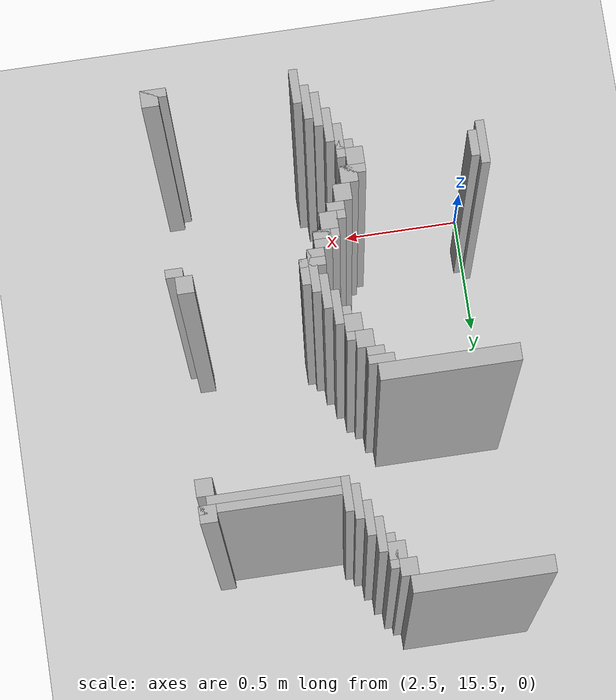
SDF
<sdf version="1.6">
 <world name="slam_world">
  <model name="ground_plane">
   <static>true</static>
   <link name="link">
    <collision name="collision">
     <geometry><plane><normal>0 0 1</normal><size>100 100</size></plane></geometry>
    </collision>
    <visual name="visual">
     <geometry><plane><normal>0 0 1</normal><size>100 100</size></plane></geometry>
     <material>
      <ambient>0.8 0.8 0.8 1</ambient>
      <diffuse>0.8 0.8 0.8 1</diffuse>
      <specular>0.8 0.8 0.8 1</specular>
     </material>
    </visual>
   </link>
  </model>
  <model name="wall_1">
   <static>true</static>
   <pose>2.7494199535962878 17.366589327146173 1.0 0 0 0</pose>
   <link name="link">
    <collision name="collision">
     <geometry><box><size>0.5568445475638051 0.06960556844547564 2.0</size></box></geometry>
    </collision>
    <visual name="visual">
     <geometry><box><size>0.5568445475638051 0.06960556844547564 2.0</size></box></geometry>
     <material><ambient>0.5 0.5 0.5 1</ambient><diffuse>0.7 0.7 0.7 1</diffuse></material>
    </visual>
   </link>
  </model>
  <model name="wall_14">
   <static>true</static>
   <pose>3.02784222737819 17.296983758700694 1.0 0 0 0</pose>
   <link name="link">
    <collision name="collision">
     <geometry><box><size>0.06960556844547564 0.06960556844547564 2.0</size></box></geometry>
    </collision>
    <visual name="visual">
     <geometry><box><size>0.06960556844547564 0.06960556844547564 2.0</size></box></geometry>
     <material><ambient>0.5 0.5 0.5 1</ambient><diffuse>0.7 0.7 0.7 1</diffuse></material>
    </visual>
   </link>
  </model>
  <model name="wall_34">
   <static>true</static>
   <pose>3.0800464037122968 17.22737819025522 1.0 0 0 0</pose>
   <link name="link">
    <collision name="collision">
     <geometry><box><size>0.03480278422273782 0.13921113689095127 2.0</size></box></geometry>
    </collision>
    <visual name="visual">
     <geometry><box><size>0.03480278422273782 0.13921113689095127 2.0</size></box></geometry>
     <material><ambient>0.5 0.5 0.5 1</ambient><diffuse>0.7 0.7 0.7 1</diffuse></material>
    </visual>
   </link>
  </model>
  <model name="wall_54">
   <static>true</static>
   <pose>3.062645011600928 17.22737819025522 1.0 0 0 0</pose>
   <link name="link">
    <collision name="collision">
     <geometry><box><size>0.06960556844547564 0.06960556844547564 2.0</size></box></geometry>
    </collision>
    <visual name="visual">
     <geometry><box><size>0.06960556844547564 0.06960556844547564 2.0</size></box></geometry>
     <material><ambient>0.5 0.5 0.5 1</ambient><diffuse>0.7 0.7 0.7 1</diffuse></material>
    </visual>
   </link>
  </model>
  <model name="wall_74">
   <static>true</static>
   <pose>3.1148491879350346 17.157772621809745 1.0 0 0 0</pose>
   <link name="link">
    <collision name="collision">
     <geometry><box><size>0.03480278422273782 0.13921113689095127 2.0</size></box></geometry>
    </collision>
    <visual name="visual">
     <geometry><box><size>0.03480278422273782 0.13921113689095127 2.0</size></box></geometry>
     <material><ambient>0.5 0.5 0.5 1</ambient><diffuse>0.7 0.7 0.7 1</diffuse></material>
    </visual>
   </link>
  </model>
  <model name="wall_104">
   <static>true</static>
   <pose>3.1496519721577725 17.08816705336427 1.0 0 0 0</pose>
   <link name="link">
    <collision name="collision">
     <geometry><box><size>0.03480278422273782 0.13921113689095127 2.0</size></box></geometry>
    </collision>
    <visual name="visual">
     <geometry><box><size>0.03480278422273782 0.13921113689095127 2.0</size></box></geometry>
     <material><ambient>0.5 0.5 0.5 1</ambient><diffuse>0.7 0.7 0.7 1</diffuse></material>
    </visual>
   </link>
  </model>
  <model name="wall_124">
   <static>true</static>
   <pose>3.1844547563805103 17.01856148491879 1.0 0 0 0</pose>
   <link name="link">
    <collision name="collision">
     <geometry><box><size>0.03480278422273782 0.13921113689095127 2.0</size></box></geometry>
    </collision>
    <visual name="visual">
     <geometry><box><size>0.03480278422273782 0.13921113689095127 2.0</size></box></geometry>
     <material><ambient>0.5 0.5 0.5 1</ambient><diffuse>0.7 0.7 0.7 1</diffuse></material>
    </visual>
   </link>
  </model>
  <model name="wall_144">
   <static>true</static>
   <pose>3.219257540603248 16.983758700696054 1.0 0 0 0</pose>
   <link name="link">
    <collision name="collision">
     <geometry><box><size>0.03480278422273782 0.13921113689095127 2.0</size></box></geometry>
    </collision>
    <visual name="visual">
     <geometry><box><size>0.03480278422273782 0.13921113689095127 2.0</size></box></geometry>
     <material><ambient>0.5 0.5 0.5 1</ambient><diffuse>0.7 0.7 0.7 1</diffuse></material>
    </visual>
   </link>
  </model>
  <model name="wall_163">
   <static>true</static>
   <pose>3.7587006960556844 16.983758700696054 1.0 0 0 0</pose>
   <link name="link">
    <collision name="collision">
     <geometry><box><size>0.06960556844547564 0.06960556844547564 2.0</size></box></geometry>
    </collision>
    <visual name="visual">
     <geometry><box><size>0.06960556844547564 0.06960556844547564 2.0</size></box></geometry>
     <material><ambient>0.5 0.5 0.5 1</ambient><diffuse>0.7 0.7 0.7 1</diffuse></material>
    </visual>
   </link>
  </model>
  <model name="wall_173">
   <static>true</static>
   <pose>3.51508120649652 16.966357308584687 1.0 0 0 0</pose>
   <link name="link">
    <collision name="collision">
     <geometry><box><size>0.5568445475638051 0.03480278422273782 2.0</size></box></geometry>
    </collision>
    <visual name="visual">
     <geometry><box><size>0.5568445475638051 0.03480278422273782 2.0</size></box></geometry>
     <material><ambient>0.5 0.5 0.5 1</ambient><diffuse>0.7 0.7 0.7 1</diffuse></material>
    </visual>
   </link>
  </model>
  <model name="wall_184">
   <static>true</static>
   <pose>3.4976798143851506 16.93155452436195 1.0 0 0 0</pose>
   <link name="link">
    <collision name="collision">
     <geometry><box><size>0.5220417633410672 0.03480278422273782 2.0</size></box></geometry>
    </collision>
    <visual name="visual">
     <geometry><box><size>0.5220417633410672 0.03480278422273782 2.0</size></box></geometry>
     <material><ambient>0.5 0.5 0.5 1</ambient><diffuse>0.7 0.7 0.7 1</diffuse></material>
    </visual>
   </link>
  </model>
  <model name="wall_194">
   <static>true</static>
   <pose>3.7587006960556844 16.87935034802784 1.0 0 0 0</pose>
   <link name="link">
    <collision name="collision">
     <geometry><box><size>0.06960556844547564 0.06960556844547564 2.0</size></box></geometry>
    </collision>
    <visual name="visual">
     <geometry><box><size>0.06960556844547564 0.06960556844547564 2.0</size></box></geometry>
     <material><ambient>0.5 0.5 0.5 1</ambient><diffuse>0.7 0.7 0.7 1</diffuse></material>
    </visual>
   </link>
  </model>
  <model name="wall_276">
   <static>true</static>
   <pose>2.7494199535962878 16.531322505800464 1.0 0 0 0</pose>
   <link name="link">
    <collision name="collision">
     <geometry><box><size>0.5568445475638051 0.06960556844547564 2.0</size></box></geometry>
    </collision>
    <visual name="visual">
     <geometry><box><size>0.5568445475638051 0.06960556844547564 2.0</size></box></geometry>
     <material><ambient>0.5 0.5 0.5 1</ambient><diffuse>0.7 0.7 0.7 1</diffuse></material>
    </visual>
   </link>
  </model>
  <model name="wall_296">
   <static>true</static>
   <pose>3.010440835266821 16.479118329466356 1.0 0 0 0</pose>
   <link name="link">
    <collision name="collision">
     <geometry><box><size>0.10440835266821345 0.03480278422273782 2.0</size></box></geometry>
    </collision>
    <visual name="visual">
     <geometry><box><size>0.10440835266821345 0.03480278422273782 2.0</size></box></geometry>
     <material><ambient>0.5 0.5 0.5 1</ambient><diffuse>0.7 0.7 0.7 1</diffuse></material>
    </visual>
   </link>
  </model>
  <model name="wall_308">
   <static>true</static>
   <pose>3.02784222737819 16.44431554524362 1.0 0 0 0</pose>
   <link name="link">
    <collision name="collision">
     <geometry><box><size>0.06960556844547564 0.03480278422273782 2.0</size></box></geometry>
    </collision>
    <visual name="visual">
     <geometry><box><size>0.06960556844547564 0.03480278422273782 2.0</size></box></geometry>
     <material><ambient>0.5 0.5 0.5 1</ambient><diffuse>0.7 0.7 0.7 1</diffuse></material>
    </visual>
   </link>
  </model>
  <model name="wall_319">
   <static>true</static>
   <pose>3.062645011600928 16.39211136890951 1.0 0 0 0</pose>
   <link name="link">
    <collision name="collision">
     <geometry><box><size>0.06960556844547564 0.06960556844547564 2.0</size></box></geometry>
    </collision>
    <visual name="visual">
     <geometry><box><size>0.06960556844547564 0.06960556844547564 2.0</size></box></geometry>
     <material><ambient>0.5 0.5 0.5 1</ambient><diffuse>0.7 0.7 0.7 1</diffuse></material>
    </visual>
   </link>
  </model>
  <model name="wall_332">
   <static>true</static>
   <pose>3.1148491879350346 16.322505800464036 1.0 0 0 0</pose>
   <link name="link">
    <collision name="collision">
     <geometry><box><size>0.03480278422273782 0.13921113689095127 2.0</size></box></geometry>
    </collision>
    <visual name="visual">
     <geometry><box><size>0.03480278422273782 0.13921113689095127 2.0</size></box></geometry>
     <material><ambient>0.5 0.5 0.5 1</ambient><diffuse>0.7 0.7 0.7 1</diffuse></material>
    </visual>
   </link>
  </model>
  <model name="wall_345">
   <static>true</static>
   <pose>3.097447795823666 16.322505800464036 1.0 0 0 0</pose>
   <link name="link">
    <collision name="collision">
     <geometry><box><size>0.06960556844547564 0.06960556844547564 2.0</size></box></geometry>
    </collision>
    <visual name="visual">
     <geometry><box><size>0.06960556844547564 0.06960556844547564 2.0</size></box></geometry>
     <material><ambient>0.5 0.5 0.5 1</ambient><diffuse>0.7 0.7 0.7 1</diffuse></material>
    </visual>
   </link>
  </model>
  <model name="wall_358">
   <static>true</static>
   <pose>3.1496519721577725 16.25290023201856 1.0 0 0 0</pose>
   <link name="link">
    <collision name="collision">
     <geometry><box><size>0.03480278422273782 0.13921113689095127 2.0</size></box></geometry>
    </collision>
    <visual name="visual">
     <geometry><box><size>0.03480278422273782 0.13921113689095127 2.0</size></box></geometry>
     <material><ambient>0.5 0.5 0.5 1</ambient><diffuse>0.7 0.7 0.7 1</diffuse></material>
    </visual>
   </link>
  </model>
  <model name="wall_376">
   <static>true</static>
   <pose>3.1844547563805103 16.183294663573086 1.0 0 0 0</pose>
   <link name="link">
    <collision name="collision">
     <geometry><box><size>0.03480278422273782 0.13921113689095127 2.0</size></box></geometry>
    </collision>
    <visual name="visual">
     <geometry><box><size>0.03480278422273782 0.13921113689095127 2.0</size></box></geometry>
     <material><ambient>0.5 0.5 0.5 1</ambient><diffuse>0.7 0.7 0.7 1</diffuse></material>
    </visual>
   </link>
  </model>
  <model name="wall_394">
   <static>true</static>
   <pose>3.219257540603248 16.09628770301624 1.0 0 0 0</pose>
   <link name="link">
    <collision name="collision">
     <geometry><box><size>0.03480278422273782 0.17401392111368907 2.0</size></box></geometry>
    </collision>
    <visual name="visual">
     <geometry><box><size>0.03480278422273782 0.17401392111368907 2.0</size></box></geometry>
     <material><ambient>0.5 0.5 0.5 1</ambient><diffuse>0.7 0.7 0.7 1</diffuse></material>
    </visual>
   </link>
  </model>
  <model name="wall_407">
   <static>true</static>
   <pose>3.254060324825986 16.09628770301624 1.0 0 0 0</pose>
   <link name="link">
    <collision name="collision">
     <geometry><box><size>0.03480278422273782 0.10440835266821345 2.0</size></box></geometry>
    </collision>
    <visual name="visual">
     <geometry><box><size>0.03480278422273782 0.10440835266821345 2.0</size></box></geometry>
     <material><ambient>0.5 0.5 0.5 1</ambient><diffuse>0.7 0.7 0.7 1</diffuse></material>
    </visual>
   </link>
  </model>
  <model name="wall_418">
   <static>true</static>
   <pose>3.7238979118329465 16.07888631090487 1.0 0 0 0</pose>
   <link name="link">
    <collision name="collision">
     <geometry><box><size>0.06960556844547564 0.06960556844547564 2.0</size></box></geometry>
    </collision>
    <visual name="visual">
     <geometry><box><size>0.06960556844547564 0.06960556844547564 2.0</size></box></geometry>
     <material><ambient>0.5 0.5 0.5 1</ambient><diffuse>0.7 0.7 0.7 1</diffuse></material>
    </visual>
   </link>
  </model>
  <model name="wall_431">
   <static>true</static>
   <pose>3.219257540603248 16.061484918793504 1.0 0 0 0</pose>
   <link name="link">
    <collision name="collision">
     <geometry><box><size>0.10440835266821345 0.03480278422273782 2.0</size></box></geometry>
    </collision>
    <visual name="visual">
     <geometry><box><size>0.10440835266821345 0.03480278422273782 2.0</size></box></geometry>
     <material><ambient>0.5 0.5 0.5 1</ambient><diffuse>0.7 0.7 0.7 1</diffuse></material>
    </visual>
   </link>
  </model>
  <model name="wall_446">
   <static>true</static>
   <pose>3.201856148491879 16.026682134570766 1.0 0 0 0</pose>
   <link name="link">
    <collision name="collision">
     <geometry><box><size>0.06960556844547564 0.03480278422273782 2.0</size></box></geometry>
    </collision>
    <visual name="visual">
     <geometry><box><size>0.06960556844547564 0.03480278422273782 2.0</size></box></geometry>
     <material><ambient>0.5 0.5 0.5 1</ambient><diffuse>0.7 0.7 0.7 1</diffuse></material>
    </visual>
   </link>
  </model>
  <model name="wall_447">
   <static>true</static>
   <pose>3.7587006960556844 16.026682134570766 1.0 0 0 0</pose>
   <link name="link">
    <collision name="collision">
     <geometry><box><size>0.06960556844547564 0.03480278422273782 2.0</size></box></geometry>
    </collision>
    <visual name="visual">
     <geometry><box><size>0.06960556844547564 0.03480278422273782 2.0</size></box></geometry>
     <material><ambient>0.5 0.5 0.5 1</ambient><diffuse>0.7 0.7 0.7 1</diffuse></material>
    </visual>
   </link>
  </model>
  <model name="wall_461">
   <static>true</static>
   <pose>3.167053364269141 15.974477958236658 1.0 0 0 0</pose>
   <link name="link">
    <collision name="collision">
     <geometry><box><size>0.06960556844547564 0.06960556844547564 2.0</size></box></geometry>
    </collision>
    <visual name="visual">
     <geometry><box><size>0.06960556844547564 0.06960556844547564 2.0</size></box></geometry>
     <material><ambient>0.5 0.5 0.5 1</ambient><diffuse>0.7 0.7 0.7 1</diffuse></material>
    </visual>
   </link>
  </model>
  <model name="wall_476">
   <static>true</static>
   <pose>3.1496519721577725 15.95707656612529 1.0 0 0 0</pose>
   <link name="link">
    <collision name="collision">
     <geometry><box><size>0.10440835266821345 0.03480278422273782 2.0</size></box></geometry>
    </collision>
    <visual name="visual">
     <geometry><box><size>0.10440835266821345 0.03480278422273782 2.0</size></box></geometry>
     <material><ambient>0.5 0.5 0.5 1</ambient><diffuse>0.7 0.7 0.7 1</diffuse></material>
    </visual>
   </link>
  </model>
  <model name="wall_490">
   <static>true</static>
   <pose>3.1322505800464038 15.904872389791183 1.0 0 0 0</pose>
   <link name="link">
    <collision name="collision">
     <geometry><box><size>0.06960556844547564 0.06960556844547564 2.0</size></box></geometry>
    </collision>
    <visual name="visual">
     <geometry><box><size>0.06960556844547564 0.06960556844547564 2.0</size></box></geometry>
     <material><ambient>0.5 0.5 0.5 1</ambient><diffuse>0.7 0.7 0.7 1</diffuse></material>
    </visual>
   </link>
  </model>
  <model name="wall_500">
   <static>true</static>
   <pose>3.1148491879350346 15.887470997679813 1.0 0 0 0</pose>
   <link name="link">
    <collision name="collision">
     <geometry><box><size>0.10440835266821345 0.03480278422273782 2.0</size></box></geometry>
    </collision>
    <visual name="visual">
     <geometry><box><size>0.10440835266821345 0.03480278422273782 2.0</size></box></geometry>
     <material><ambient>0.5 0.5 0.5 1</ambient><diffuse>0.7 0.7 0.7 1</diffuse></material>
    </visual>
   </link>
  </model>
  <model name="wall_514">
   <static>true</static>
   <pose>3.097447795823666 15.852668213457076 1.0 0 0 0</pose>
   <link name="link">
    <collision name="collision">
     <geometry><box><size>0.06960556844547564 0.03480278422273782 2.0</size></box></geometry>
    </collision>
    <visual name="visual">
     <geometry><box><size>0.06960556844547564 0.03480278422273782 2.0</size></box></geometry>
     <material><ambient>0.5 0.5 0.5 1</ambient><diffuse>0.7 0.7 0.7 1</diffuse></material>
    </visual>
   </link>
  </model>
  <model name="wall_523">
   <static>true</static>
   <pose>3.062645011600928 15.80046403712297 1.0 0 0 0</pose>
   <link name="link">
    <collision name="collision">
     <geometry><box><size>0.06960556844547564 0.06960556844547564 2.0</size></box></geometry>
    </collision>
    <visual name="visual">
     <geometry><box><size>0.06960556844547564 0.06960556844547564 2.0</size></box></geometry>
     <material><ambient>0.5 0.5 0.5 1</ambient><diffuse>0.7 0.7 0.7 1</diffuse></material>
    </visual>
   </link>
  </model>
  <model name="wall_537">
   <static>true</static>
   <pose>2.488399071925754 15.678654292343387 1.0 0 0 0</pose>
   <link name="link">
    <collision name="collision">
     <geometry><box><size>0.03480278422273782 0.17401392111368907 2.0</size></box></geometry>
    </collision>
    <visual name="visual">
     <geometry><box><size>0.03480278422273782 0.17401392111368907 2.0</size></box></geometry>
     <material><ambient>0.5 0.5 0.5 1</ambient><diffuse>0.7 0.7 0.7 1</diffuse></material>
    </visual>
   </link>
  </model>
  <model name="wall_538">
   <static>true</static>
   <pose>3.02784222737819 15.730858468677493 1.0 0 0 0</pose>
   <link name="link">
    <collision name="collision">
     <geometry><box><size>0.06960556844547564 0.06960556844547564 2.0</size></box></geometry>
    </collision>
    <visual name="visual">
     <geometry><box><size>0.06960556844547564 0.06960556844547564 2.0</size></box></geometry>
     <material><ambient>0.5 0.5 0.5 1</ambient><diffuse>0.7 0.7 0.7 1</diffuse></material>
    </visual>
   </link>
  </model>
  <model name="wall_553">
   <static>true</static>
   <pose>2.523201856148492 15.678654292343387 1.0 0 0 0</pose>
   <link name="link">
    <collision name="collision">
     <geometry><box><size>0.03480278422273782 0.10440835266821345 2.0</size></box></geometry>
    </collision>
    <visual name="visual">
     <geometry><box><size>0.03480278422273782 0.10440835266821345 2.0</size></box></geometry>
     <material><ambient>0.5 0.5 0.5 1</ambient><diffuse>0.7 0.7 0.7 1</diffuse></material>
    </visual>
   </link>
  </model>
  <model name="wall_554">
   <static>true</static>
   <pose>3.010440835266821 15.713457076566124 1.0 0 0 0</pose>
   <link name="link">
    <collision name="collision">
     <geometry><box><size>0.10440835266821345 0.03480278422273782 2.0</size></box></geometry>
    </collision>
    <visual name="visual">
     <geometry><box><size>0.10440835266821345 0.03480278422273782 2.0</size></box></geometry>
     <material><ambient>0.5 0.5 0.5 1</ambient><diffuse>0.7 0.7 0.7 1</diffuse></material>
    </visual>
   </link>
  </model>
  <model name="wall_566">
   <static>true</static>
   <pose>2.9930394431554523 15.661252900232018 1.0 0 0 0</pose>
   <link name="link">
    <collision name="collision">
     <geometry><box><size>0.06960556844547564 0.06960556844547564 2.0</size></box></geometry>
    </collision>
    <visual name="visual">
     <geometry><box><size>0.06960556844547564 0.06960556844547564 2.0</size></box></geometry>
     <material><ambient>0.5 0.5 0.5 1</ambient><diffuse>0.7 0.7 0.7 1</diffuse></material>
    </visual>
   </link>
  </model>
  <model name="wall_579">
   <static>true</static>
   <pose>3.045243619489559 15.591647331786543 1.0 0 0 0</pose>
   <link name="link">
    <collision name="collision">
     <geometry><box><size>0.03480278422273782 0.13921113689095127 2.0</size></box></geometry>
    </collision>
    <visual name="visual">
     <geometry><box><size>0.03480278422273782 0.13921113689095127 2.0</size></box></geometry>
     <material><ambient>0.5 0.5 0.5 1</ambient><diffuse>0.7 0.7 0.7 1</diffuse></material>
    </visual>
   </link>
  </model>
  <model name="wall_598">
   <static>true</static>
   <pose>3.02784222737819 15.609048723897912 1.0 0 0 0</pose>
   <link name="link">
    <collision name="collision">
     <geometry><box><size>0.06960556844547564 0.03480278422273782 2.0</size></box></geometry>
    </collision>
    <visual name="visual">
     <geometry><box><size>0.06960556844547564 0.03480278422273782 2.0</size></box></geometry>
     <material><ambient>0.5 0.5 0.5 1</ambient><diffuse>0.7 0.7 0.7 1</diffuse></material>
    </visual>
   </link>
  </model>
  <model name="wall_614">
   <static>true</static>
   <pose>3.0800464037122968 15.522041763341067 1.0 0 0 0</pose>
   <link name="link">
    <collision name="collision">
     <geometry><box><size>0.03480278422273782 0.13921113689095127 2.0</size></box></geometry>
    </collision>
    <visual name="visual">
     <geometry><box><size>0.03480278422273782 0.13921113689095127 2.0</size></box></geometry>
     <material><ambient>0.5 0.5 0.5 1</ambient><diffuse>0.7 0.7 0.7 1</diffuse></material>
    </visual>
   </link>
  </model>
  <model name="wall_630">
   <static>true</static>
   <pose>3.1148491879350346 15.452436194895592 1.0 0 0 0</pose>
   <link name="link">
    <collision name="collision">
     <geometry><box><size>0.03480278422273782 0.13921113689095127 2.0</size></box></geometry>
    </collision>
    <visual name="visual">
     <geometry><box><size>0.03480278422273782 0.13921113689095127 2.0</size></box></geometry>
     <material><ambient>0.5 0.5 0.5 1</ambient><diffuse>0.7 0.7 0.7 1</diffuse></material>
    </visual>
   </link>
  </model>
  <model name="wall_646">
   <static>true</static>
   <pose>3.1496519721577725 15.417633410672853 1.0 0 0 0</pose>
   <link name="link">
    <collision name="collision">
     <geometry><box><size>0.03480278422273782 0.13921113689095127 2.0</size></box></geometry>
    </collision>
    <visual name="visual">
     <geometry><box><size>0.03480278422273782 0.13921113689095127 2.0</size></box></geometry>
     <material><ambient>0.5 0.5 0.5 1</ambient><diffuse>0.7 0.7 0.7 1</diffuse></material>
    </visual>
   </link>
  </model>
  <model name="wall_673">
   <static>true</static>
   <pose>3.1844547563805103 15.348027842227378 1.0 0 0 0</pose>
   <link name="link">
    <collision name="collision">
     <geometry><box><size>0.03480278422273782 0.13921113689095127 2.0</size></box></geometry>
    </collision>
    <visual name="visual">
     <geometry><box><size>0.03480278422273782 0.13921113689095127 2.0</size></box></geometry>
     <material><ambient>0.5 0.5 0.5 1</ambient><diffuse>0.7 0.7 0.7 1</diffuse></material>
    </visual>
   </link>
  </model>
  <model name="wall_696">
   <static>true</static>
   <pose>3.7587006960556844 15.31322505800464 1.0 0 0 0</pose>
   <link name="link">
    <collision name="collision">
     <geometry><box><size>0.06960556844547564 0.06960556844547564 2.0</size></box></geometry>
    </collision>
    <visual name="visual">
     <geometry><box><size>0.06960556844547564 0.06960556844547564 2.0</size></box></geometry>
     <material><ambient>0.5 0.5 0.5 1</ambient><diffuse>0.7 0.7 0.7 1</diffuse></material>
    </visual>
   </link>
  </model>
  <model name="wall_712">
   <static>true</static>
   <pose>3.741299303944315 15.295823665893272 1.0 0 0 0</pose>
   <link name="link">
    <collision name="collision">
     <geometry><box><size>0.10440835266821345 0.03480278422273782 2.0</size></box></geometry>
    </collision>
    <visual name="visual">
     <geometry><box><size>0.10440835266821345 0.03480278422273782 2.0</size></box></geometry>
     <material><ambient>0.5 0.5 0.5 1</ambient><diffuse>0.7 0.7 0.7 1</diffuse></material>
    </visual>
   </link>
  </model>
 </world>
</sdf>
